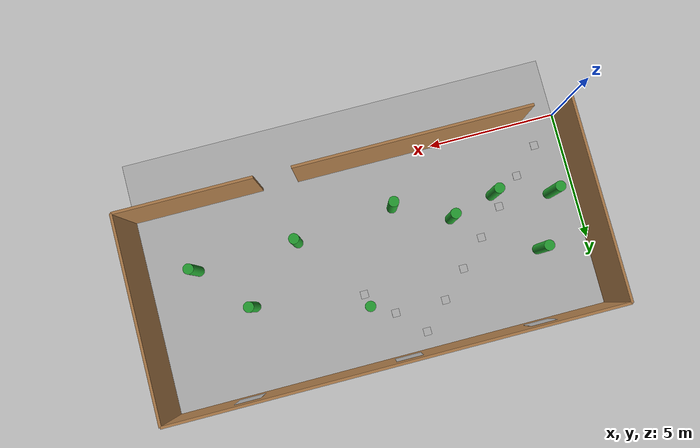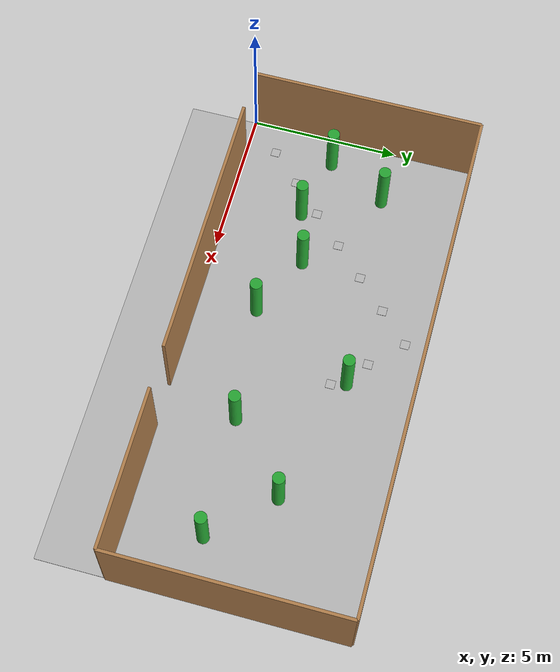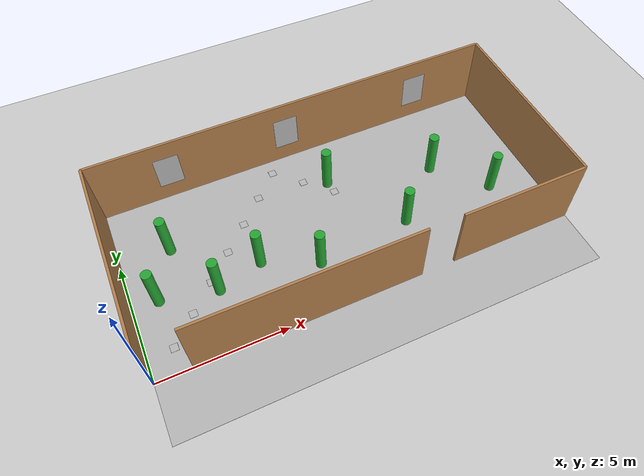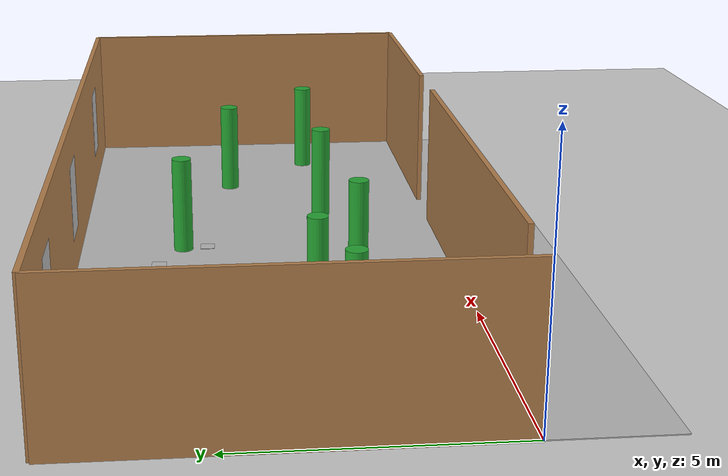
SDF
<sdf version="1.5">
 <world name="default">
  <light type="directional" name="sun">
   <cast_shadows>false</cast_shadows>
   <pose>0 0 100 0 0 0</pose>
   <diffuse>0.8 0.8 0.8 1</diffuse>
   <specular>0.9 0.9 0.9 1</specular>
   <attenuation>
    <range>1000</range>
    <constant>0.9</constant>
    <linear>0.01</linear>
    <quadratic>0.001</quadratic>
   </attenuation>
   <direction>0.2 0.2 -0.9</direction>
  </light>
  <include><uri>model://ground_plane</uri></include>
  <physics type="ode">
   <gravity>0 0 -9.8066</gravity>
   <ode>
    <solver>
     <type>quick</type>
     <iters>150</iters>
     <sor>1.3</sor>
     <use_dynamic_moi_rescaling>0</use_dynamic_moi_rescaling>
    </solver>
    <constraints>
     <cfm>0.00001</cfm>
     <erp>0.2</erp>
     <contact_max_correcting_vel>1000</contact_max_correcting_vel>
     <contact_surface_layer>0.01</contact_surface_layer>
    </constraints>
   </ode>
   <max_step_size>0.004</max_step_size>
   <real_time_factor>1000.0</real_time_factor>
   <real_time_update_rate>250</real_time_update_rate>
   <magnetic_field>6.0e-6 2.3e-5 -4.2e-5</magnetic_field>
  </physics>
  <model name="aomv_texture">
   <static>true</static>
   <link name="logo">
    <pose>8.5 2.7 -0.0 0.0 0.0 0.0</pose>
    <visual name="visual">
     <cast_shadows>false</cast_shadows>
     <geometry><box><size>17 10 0.02</size></box></geometry>
     <material>
      <script>
       <uri>model://logo_ground/materials/scripts</uri>
       <uri>model://logo_ground/materials/textures</uri>
       <name>Cube/logo_ground</name>
      </script>
     </material>
    </visual>
   </link>
   <link name="poster1">
    <pose>3.0 7.65 1.5 0 1.57 1.57</pose>
    <visual name="visual">
     <cast_shadows>false</cast_shadows>
     <geometry><box><size>1.5 1.0 0.01</size></box></geometry>
     <material><script><uri>model://texture/texture.material</uri><name>Poster1</name></script></material>
    </visual>
   </link>
   <link name="poster2">
    <pose>8.0 7.65 1.5 0 1.57 1.57</pose>
    <visual name="visual">
     <cast_shadows>false</cast_shadows>
     <geometry><box><size>1.5 1.0 0.01</size></box></geometry>
     <material><script><uri>model://texture/texture.material</uri><name>Poster2</name></script></material>
    </visual>
   </link>
   <link name="poster3">
    <pose>14.0 7.65 1.5 0 1.57 1.57</pose>
    <visual name="visual">
     <cast_shadows>false</cast_shadows>
     <geometry><box><size>1.5 1.0 0.01</size></box></geometry>
     <material><script><uri>model://texture/texture.material</uri><name>Poster3</name></script></material>
    </visual>
   </link>
  </model>
  <model name="room_wall">
   <static>true</static>
   <link name="wall_front">
    <pose>8.5 7.7 1.5 0 -0 0.0</pose>
    <inertial><mass>2.0</mass></inertial>
    <collision name="collision"><geometry><box><size>17 0.1 3</size></box></geometry></collision>
    <visual name="visual">
     <geometry><box><size>17 0.1 3</size></box></geometry>
     <material>
      <script><uri>file://media/materials/scripts/gazebo.material</uri><name>Gazebo/Wood</name></script>
      <ambient>1 1 1 1</ambient>
     </material>
    </visual>
   </link>
   <link name="wall_back1">
    <pose>5.9 0 1.5 0 -0 0.0</pose>
    <inertial><mass>2.0</mass></inertial>
    <collision name="collision"><geometry><box><size>9 0.1 3</size></box></geometry></collision>
    <visual name="visual">
     <geometry><box><size>9 0.1 3</size></box></geometry>
     <material>
      <script><uri>file://media/materials/scripts/gazebo.material</uri><name>Gazebo/Wood</name></script>
      <ambient>1 1 1 1</ambient>
     </material>
    </visual>
   </link>
   <link name="wall_back2">
    <pose>14.4 0 1.5 0 -0 0.0</pose>
    <inertial><mass>2.0</mass></inertial>
    <collision name="collision"><geometry><box><size>5.2 0.1 3</size></box></geometry></collision>
    <visual name="visual">
     <geometry><box><size>5.2 0.1 3</size></box></geometry>
     <material>
      <script><uri>file://media/materials/scripts/gazebo.material</uri><name>Gazebo/Wood</name></script>
      <ambient>1 1 1 1</ambient>
     </material>
    </visual>
   </link>
   <link name="wall_left">
    <pose>-0 3.85 1.5 0 -0 1.57</pose>
    <inertial><mass>2.0</mass></inertial>
    <collision name="collision"><geometry><box><size>7.7 0.1 3</size></box></geometry></collision>
    <visual name="visual">
     <geometry><box><size>7.7 0.1 3</size></box></geometry>
     <material>
      <script><uri>file://media/materials/scripts/gazebo.material</uri><name>Gazebo/Wood</name></script>
      <ambient>1 1 1 1</ambient>
     </material>
    </visual>
   </link>
   <link name="wall_right">
    <pose>17 3.85 1.5 0 -0 1.57</pose>
    <inertial><mass>2.0</mass></inertial>
    <collision name="collision"><geometry><box><size>7.7 0.1 3</size></box></geometry></collision>
    <visual name="visual">
     <geometry><box><size>7.7 0.1 3</size></box></geometry>
     <material>
      <script><uri>file://media/materials/scripts/gazebo.material</uri><name>Gazebo/Wood</name></script>
      <ambient>1 1 1 1</ambient>
     </material>
    </visual>
   </link>
  </model>
  <model name="aruco">
   <static>true</static>
   <link name="aruco_1">
    <pose>1.0 1.0 0.01 0.0 0.0 0.0</pose>
    <visual name="visual">
     <cast_shadows>false</cast_shadows>
     <geometry><box><size>0.3 0.3 0.02</size></box></geometry>
     <material><script><uri>model://texture_aruco/texture.material</uri><name>aruco_1</name></script></material>
    </visual>
   </link>
   <link name="aruco_2">
    <pose>2.0 2.0 0.01 0.0 0.0 0.0</pose>
    <visual name="visual">
     <cast_shadows>false</cast_shadows>
     <geometry><box><size>0.3 0.3 0.02</size></box></geometry>
     <material><script><uri>model://texture_aruco/texture.material</uri><name>aruco_2</name></script></material>
    </visual>
   </link>
   <link name="aruco_3">
    <pose>3.0 3.0 0.01 0.0 0.0 0.0</pose>
    <visual name="visual">
     <cast_shadows>false</cast_shadows>
     <geometry><box><size>0.3 0.3 0.02</size></box></geometry>
     <material><script><uri>model://texture_aruco/texture.material</uri><name>aruco_3</name></script></material>
    </visual>
   </link>
   <link name="aruco_4">
    <pose>4.0 4.0 0.01 0.0 0.0 0.0</pose>
    <visual name="visual">
     <cast_shadows>false</cast_shadows>
     <geometry><box><size>0.3 0.3 0.02</size></box></geometry>
     <material><script><uri>model://texture_aruco/texture.material</uri><name>aruco_4</name></script></material>
    </visual>
   </link>
   <link name="aruco_5">
    <pose>5.0 5.0 0.01 0.0 0.0 0.0</pose>
    <visual name="visual">
     <cast_shadows>false</cast_shadows>
     <geometry><box><size>0.3 0.3 0.02</size></box></geometry>
     <material><script><uri>model://texture_aruco/texture.material</uri><name>aruco_5</name></script></material>
    </visual>
   </link>
   <link name="aruco_6">
    <pose>6.0 6.0 0.01 0.0 0.0 0.0</pose>
    <visual name="visual">
     <cast_shadows>false</cast_shadows>
     <geometry><box><size>0.3 0.3 0.02</size></box></geometry>
     <material><script><uri>model://texture_aruco/texture.material</uri><name>aruco_6</name></script></material>
    </visual>
   </link>
   <link name="aruco_7">
    <pose>7.0 7.0 0.01 0.0 0.0 0.0</pose>
    <visual name="visual">
     <cast_shadows>false</cast_shadows>
     <geometry><box><size>0.3 0.3 0.02</size></box></geometry>
     <material><script><uri>model://texture_aruco/texture.material</uri><name>aruco_7</name></script></material>
    </visual>
   </link>
   <link name="aruco_8">
    <pose>8.0 6.0 0.01 0.0 0.0 0.0</pose>
    <visual name="visual">
     <cast_shadows>false</cast_shadows>
     <geometry><box><size>0.3 0.3 0.02</size></box></geometry>
     <material><script><uri>model://texture_aruco/texture.material</uri><name>aruco_8</name></script></material>
    </visual>
   </link>
   <link name="aruco_9">
    <pose>9.0 5.0 0.01 0.0 0.0 0.0</pose>
    <visual name="visual">
     <cast_shadows>false</cast_shadows>
     <geometry><box><size>0.3 0.3 0.02</size></box></geometry>
     <material><script><uri>model://texture_aruco/texture.material</uri><name>aruco_9</name></script></material>
    </visual>
   </link>
  </model>
  <model name="obstacle">
   <static>true</static>
   <link name="pillar_1">
    <pose>1.0 3.0 1.0 0 -0 0</pose>
    <visual name="visual">
     <geometry><cylinder><radius>0.2</radius><length>2.0</length></cylinder></geometry>
     <material>
      <script><uri>file://media/materials/scripts/gazebo.material</uri><name>Gazebo/Green</name></script>
     </material>
    </visual>
    <collision name="collision">
     <geometry><cylinder><radius>0.2</radius><length>2.0</length></cylinder></geometry>
    </collision>
   </link>
   <link name="pillar_2">
    <pose>2.0 5.0 1.0 0 -0 0</pose>
    <visual name="visual">
     <geometry><cylinder><radius>0.2</radius><length>2.0</length></cylinder></geometry>
     <material>
      <script><uri>file://media/materials/scripts/gazebo.material</uri><name>Gazebo/Green</name></script>
     </material>
    </visual>
    <collision name="collision">
     <geometry><cylinder><radius>0.2</radius><length>2.0</length></cylinder></geometry>
    </collision>
   </link>
   <link name="pillar_3">
    <pose>3.2 2.5 1.0 0 -0 0</pose>
    <visual name="visual">
     <geometry><cylinder><radius>0.2</radius><length>2.0</length></cylinder></geometry>
     <material>
      <script><uri>file://media/materials/scripts/gazebo.material</uri><name>Gazebo/Green</name></script>
     </material>
    </visual>
    <collision name="collision">
     <geometry><cylinder><radius>0.2</radius><length>2.0</length></cylinder></geometry>
    </collision>
   </link>
   <link name="pillar_4">
    <pose>5.0 3.0 1.0 0 -0 0</pose>
    <visual name="visual">
     <geometry><cylinder><radius>0.2</radius><length>2.0</length></cylinder></geometry>
     <material>
      <script><uri>file://media/materials/scripts/gazebo.material</uri><name>Gazebo/Green</name></script>
     </material>
    </visual>
    <collision name="collision">
     <geometry><cylinder><radius>0.2</radius><length>2.0</length></cylinder></geometry>
    </collision>
   </link>
   <link name="pillar_5">
    <pose>7.1 2.0 1.0 0 -0 0</pose>
    <visual name="visual">
     <geometry><cylinder><radius>0.2</radius><length>2.0</length></cylinder></geometry>
     <material>
      <script><uri>file://media/materials/scripts/gazebo.material</uri><name>Gazebo/Green</name></script>
     </material>
    </visual>
    <collision name="collision">
     <geometry><cylinder><radius>0.2</radius><length>2.0</length></cylinder></geometry>
    </collision>
   </link>
   <link name="pillar_5">
    <pose>8.9 5.5 1.0 0 -0 0</pose>
    <visual name="visual">
     <geometry><cylinder><radius>0.2</radius><length>2.0</length></cylinder></geometry>
     <material>
      <script><uri>file://media/materials/scripts/gazebo.material</uri><name>Gazebo/Green</name></script>
     </material>
    </visual>
    <collision name="collision">
     <geometry><cylinder><radius>0.2</radius><length>2.0</length></cylinder></geometry>
    </collision>
   </link>
   <link name="pillar_6">
    <pose>11.0 2.4 1.0 0 -0 0</pose>
    <visual name="visual">
     <geometry><cylinder><radius>0.2</radius><length>2.0</length></cylinder></geometry>
     <material>
      <script><uri>file://media/materials/scripts/gazebo.material</uri><name>Gazebo/Green</name></script>
     </material>
    </visual>
    <collision name="collision">
     <geometry><cylinder><radius>0.2</radius><length>2.0</length></cylinder></geometry>
    </collision>
   </link>
   <link name="pillar_7">
    <pose>13.2 4.4 1.0 0 -0 0</pose>
    <visual name="visual">
     <geometry><cylinder><radius>0.2</radius><length>2.0</length></cylinder></geometry>
     <material>
      <script><uri>file://media/materials/scripts/gazebo.material</uri><name>Gazebo/Green</name></script>
     </material>
    </visual>
    <collision name="collision">
     <geometry><cylinder><radius>0.2</radius><length>2.0</length></cylinder></geometry>
    </collision>
   </link>
   <link name="pillar_8">
    <pose>15.0 2.5 1.0 0 -0 0</pose>
    <visual name="visual">
     <geometry><cylinder><radius>0.2</radius><length>2.0</length></cylinder></geometry>
     <material>
      <script><uri>file://media/materials/scripts/gazebo.material</uri><name>Gazebo/Green</name></script>
     </material>
    </visual>
    <collision name="collision">
     <geometry><cylinder><radius>0.2</radius><length>2.0</length></cylinder></geometry>
    </collision>
   </link>
  </model>
 </world>
</sdf>
